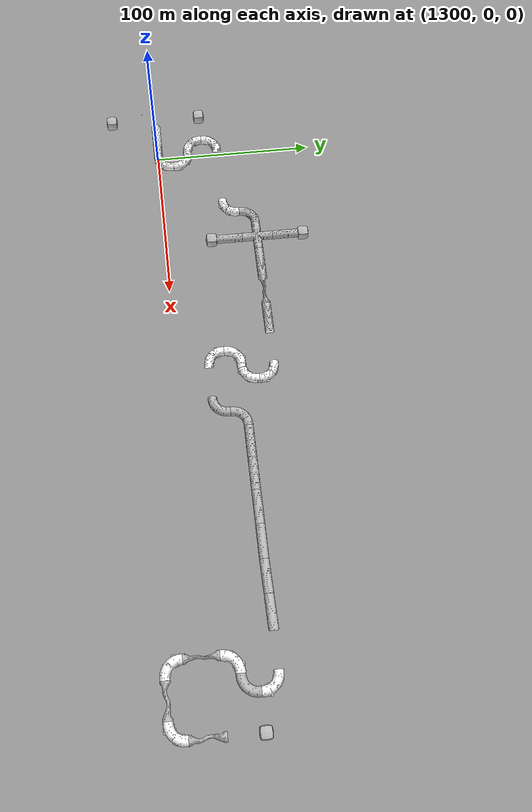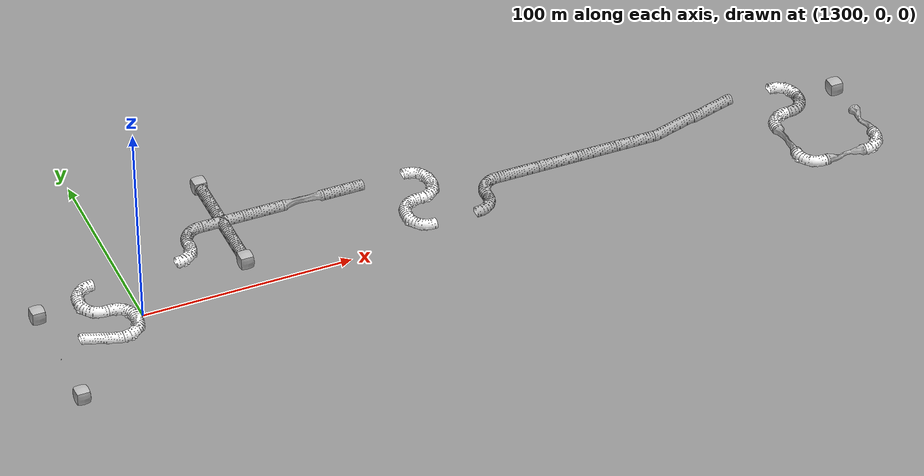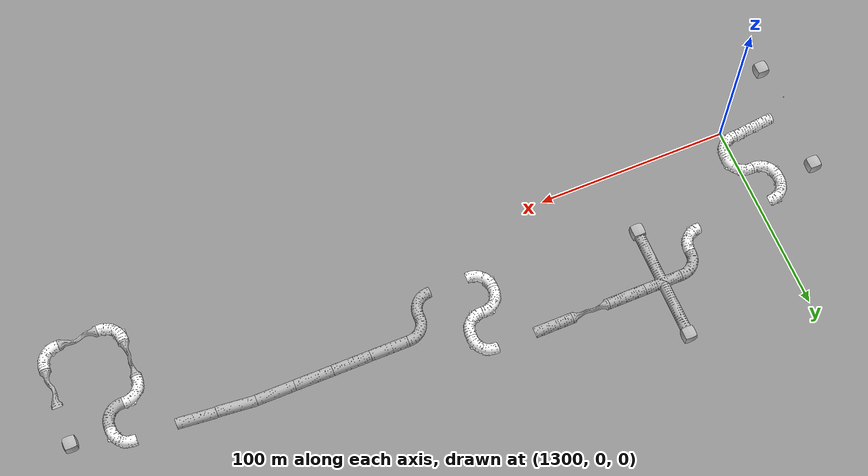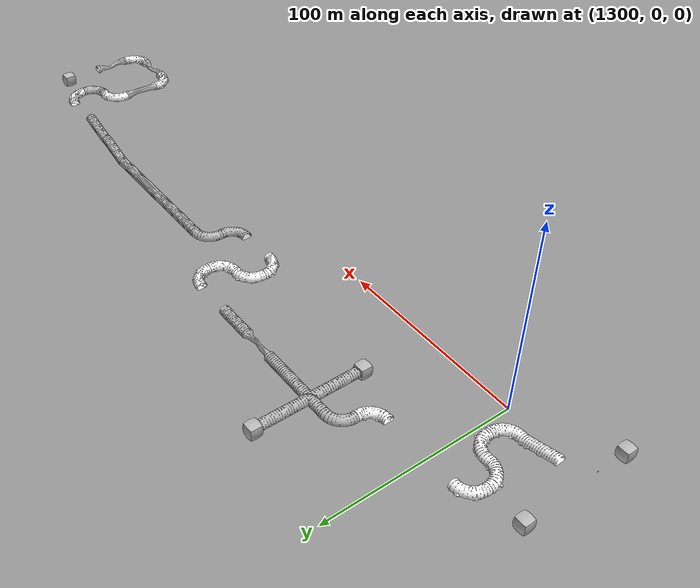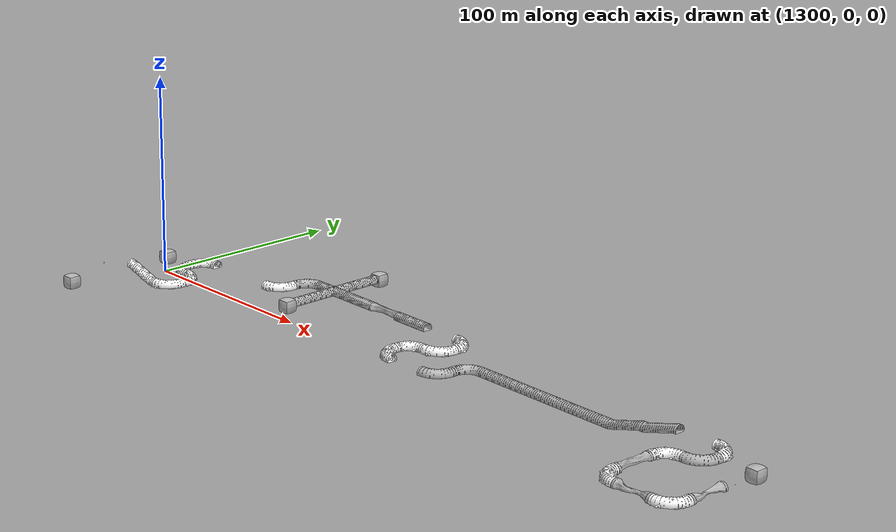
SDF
<sdf version="1.6">
 <world name="tunnel_circuit_practice_02">
  <include>
   <name>tile_10</name>
   <uri>model://tunnel_tile_5</uri>
   <pose>1360.000000 80.000000 -10.000000 0 0 0.000000</pose>
  </include>
  <include>
   <name>tile_11</name>
   <uri>model://tunnel_tile_blocker</uri>
   <pose>1360.000000 90.000000 -10.000000 0 0 -1.570796</pose>
  </include>
  <include>
   <name>tile_17</name>
   <uri>model://tunnel_tile_2</uri>
   <pose>1340.000000 60.000000 -10.000000 0 0 0.000000</pose>
  </include>
  <include>
   <name>tile_18</name>
   <uri>model://tunnel_tile_1</uri>
   <pose>1360.000000 60.000000 -10.000000 0 0 0.000000</pose>
  </include>
  <include>
   <name>tile_19</name>
   <uri>model://tunnel_tile_5</uri>
   <pose>1380.000000 60.000000 -10.000000 0 0 -1.570796</pose>
  </include>
  <include>
   <name>tile_20</name>
   <uri>model://constrained_tunnel_tile_tall</uri>
   <pose>1400.000000 60.000000 -10.000000 0 0 1.570796</pose>
  </include>
  <include>
   <name>tile_21</name>
   <uri>model://tunnel_tile_5</uri>
   <pose>1420.000000 60.000000 -10.000000 0 0 1.570796</pose>
  </include>
  <include>
   <name>tile_23</name>
   <uri>model://Rough Tunnel Tile 90-degree Turn</uri>
   <pose>1460.000000 60.000000 -10.000000 0 0 -1.570796</pose>
  </include>
  <include>
   <name>tile_62</name>
   <uri>model://Rough Tunnel Tile 90-degree Turn</uri>
   <pose>1280.000000 40.000000 -10.000000 0 0 0.000000</pose>
  </include>
  <include>
   <name>tile_65</name>
   <uri>model://Rough Tunnel Tile 90-degree Turn</uri>
   <pose>1340.000000 40.000000 -10.000000 0 0 -3.141593</pose>
  </include>
  <include>
   <name>tile_66</name>
   <uri>model://tunnel_tile_5</uri>
   <pose>1360.000000 40.000000 -10.000000 0 0 0.000000</pose>
  </include>
  <include>
   <name>tile_67</name>
   <uri>model://tunnel_tile_blocker</uri>
   <pose>1360.000000 30.000000 -10.000000 0 0 -1.570796</pose>
  </include>
  <include>
   <name>tile_68</name>
   <uri>model://Rough Tunnel Tile 90-degree Turn</uri>
   <pose>1440.000000 40.000000 -10.000000 0 0 0.000000</pose>
  </include>
  <include>
   <name>tile_69</name>
   <uri>model://Rough Tunnel Tile 90-degree Turn</uri>
   <pose>1460.000000 40.000000 -10.000000 0 0 -3.141593</pose>
  </include>
  <include>
   <name>tile_70</name>
   <uri>model://tunnel_tile_2</uri>
   <pose>1480.000000 40.000000 -10.000000 0 0 0.000000</pose>
  </include>
  <include>
   <name>tile_71</name>
   <uri>model://tunnel_tile_5</uri>
   <pose>1500.000000 40.000000 -10.000000 0 0 -1.570796</pose>
  </include>
  <include>
   <name>tile_72</name>
   <uri>model://tunnel_tile_5</uri>
   <pose>1520.000000 40.000000 -10.000000 0 0 -1.570796</pose>
  </include>
  <include>
   <name>tile_73</name>
   <uri>model://tunnel_tile_5</uri>
   <pose>1540.000000 40.000000 -10.000000 0 0 -1.570796</pose>
  </include>
  <include>
   <name>tile_74</name>
   <uri>model://tunnel_tile_5</uri>
   <pose>1560.000000 40.000000 -10.000000 0 0 -1.570796</pose>
  </include>
  <include>
   <name>tile_75</name>
   <uri>model://tunnel_tile_6</uri>
   <pose>1580.000000 40.000000 -10.000000 0 0 -1.570796</pose>
  </include>
  <include>
   <name>tile_76</name>
   <uri>model://tunnel_tile_6</uri>
   <pose>1600.000000 40.000000 -5.000000 0 0 -1.570796</pose>
  </include>
  <include>
   <name>tile_78</name>
   <uri>model://Rough Tunnel Tile 90-degree Turn</uri>
   <pose>1640.000000 40.000000 0.000000 0 0 -1.570796</pose>
  </include>
  <include>
   <name>tile_115</name>
   <uri>model://tunnel_tile_blocker</uri>
   <pose>1260.000000 30.000000 -10.000000 0 0 0.000000</pose>
  </include>
  <include>
   <name>tile_116</name>
   <uri>model://Rough Tunnel Tile 90-degree Turn</uri>
   <pose>1280.000000 20.000000 -10.000000 0 0 1.570796</pose>
  </include>
  <include>
   <name>tile_117</name>
   <uri>model://Rough Tunnel Tile 90-degree Turn</uri>
   <pose>1300.000000 20.000000 -10.000000 0 0 -1.570796</pose>
  </include>
  <include>
   <name>tile_118</name>
   <uri>model://Rough Tunnel Tile 90-degree Turn</uri>
   <pose>1440.000000 20.000000 -10.000000 0 0 1.570796</pose>
  </include>
  <include>
   <name>extinguisher_4</name>
   <uri>model://Extinguisher</uri>
   <pose>1477.969971 27.822300 -9.967780 0 0 1.570796</pose>
  </include>
  <include>
   <name>tile_120</name>
   <uri>model://tunnel_tile_2</uri>
   <pose>1480.000000 20.000000 -10.000000 0 0 -3.141593</pose>
  </include>
  <include>
   <name>tile_121</name>
   <uri>model://Rough Tunnel Tile 90-degree Turn</uri>
   <pose>1620.000000 20.000000 0.000000 0 0 0.000000</pose>
  </include>
  <include>
   <name>tile_122</name>
   <uri>model://tunnel_tile_2</uri>
   <pose>1640.000000 20.000000 0.000000 0 0 -3.141593</pose>
  </include>
  <include>
   <name>tile_124</name>
   <uri>model://tunnel_tile_blocker</uri>
   <pose>1660.000000 30.000000 0.000000 0 0 -3.141593</pose>
  </include>
  <include>
   <name>backpack_3</name>
   <uri>model://Backpack</uri>
   <pose>1258.050049 -8.885500 -4.856990 0 0 -1.466077</pose>
  </include>
  <include>
   <name>tile_165</name>
   <uri>model://Rough Tunnel Tile Ramp</uri>
   <pose>1280.000000 0.000000 -10.000000 0 0 1.570796</pose>
  </include>
  <include>
   <name>tile_166</name>
   <uri>model://Rough Tunnel Tile 90-degree Turn</uri>
   <pose>1300.000000 0.000000 -10.000000 0 0 -3.141593</pose>
  </include>
  <include>
   <name>tile_167</name>
   <uri>model://constrained_tunnel_tile_tall</uri>
   <pose>1620.000000 0.000000 0.000000 0 0 0.000000</pose>
  </include>
  <include>
   <name>tile_168</name>
   <uri>model://constrained_tunnel_tile_short</uri>
   <pose>1660.000000 0.000000 0.000000 0 0 -3.141593</pose>
  </include>
  <include>
   <name>phone_3</name>
   <uri>model://Phone</uri>
   <pose>1660.180054 17.238800 0.014312 -1.570796 0 1.570796</pose>
  </include>
  <include>
   <name>tile_184</name>
   <uri>model://tunnel_tile_blocker</uri>
   <pose>1260.000000 -30.000000 -10.000000 0 0 0.000000</pose>
  </include>
  <include>
   <name>tile_185</name>
   <uri>model://Rough Tunnel Tile 90-degree Turn</uri>
   <pose>1620.000000 -20.000000 0.000000 0 0 1.570796</pose>
  </include>
  <include>
   <name>tile_186</name>
   <uri>model://constrained_tunnel_tile_short</uri>
   <pose>1640.000000 -20.000000 0.000000 0 0 1.570796</pose>
  </include>
  <include>
   <name>tile_187</name>
   <uri>model://Rough Tunnel Tile 90-degree Turn</uri>
   <pose>1660.000000 -20.000000 0.000000 0 0 -3.141593</pose>
  </include>
 </world>
</sdf>
